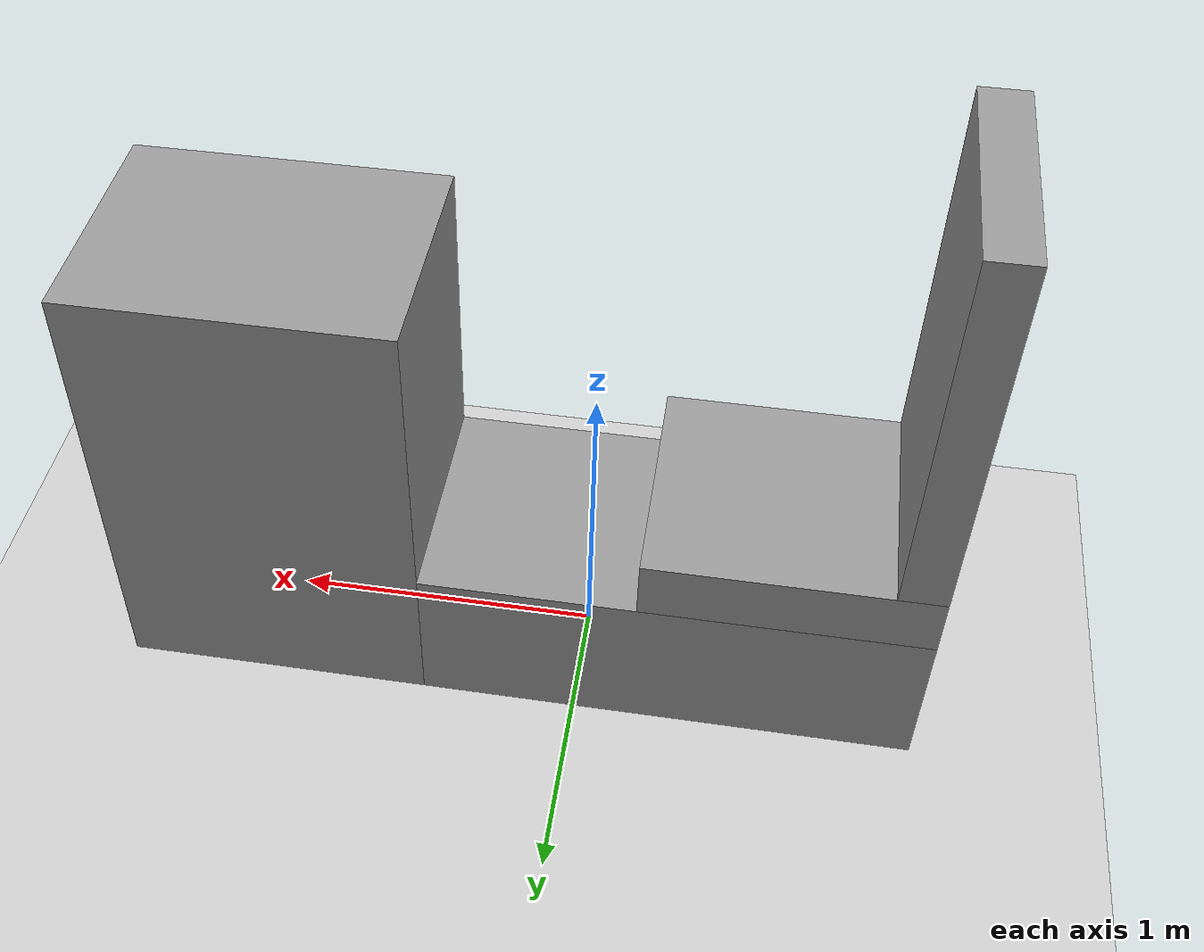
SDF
<gazebo version="1.2">
 <world name="default">
  <physics type="ode">
   <gravity>0 0 -9.81</gravity>
   <update_rate>1000</update_rate>
   <ode>
    <solver><type>quick</type><dt>0.001</dt><iters>40</iters><sor>1.0</sor></solver>
    <constraints>
     <cfm>0.0</cfm>
     <erp>0.2</erp>
     <contact_max_correcting_vel>100.0</contact_max_correcting_vel>
     <contact_surface_layer>0.0</contact_surface_layer>
    </constraints>
   </ode>
  </physics>
  <include><uri>model://sun</uri></include>
  <include><uri>model://ground_plane</uri></include>
  <model name="chair">
   <link name="chair1">
    <pose>-0.3 0.0 0.2575 0.000000 0.000000 0.000000</pose>
    <inertial><mass>100.000000</mass></inertial>
    <collision name="collision"><geometry><box><size>1.6 0.77 0.515</size></box></geometry></collision>
    <visual name="visual">
     <geometry><box><size>1.6 0.77 0.515</size></box></geometry>
     <material>
      <script><uri>file://media/materials/scripts/gazebo.material</uri><name>Gazebo/Grey</name></script>
     </material>
    </visual>
    <velocity_decay><linear>0.000000</linear><angular>0.000000</angular></velocity_decay>
   </link>
   <link name="chair2">
    <pose>-0.645 0.0 0.615 0.000000 0.000000 0.000000</pose>
    <inertial><mass>100.000000</mass></inertial>
    <collision name="collision"><geometry><box><size>0.91 0.77 0.2</size></box></geometry></collision>
    <visual name="visual">
     <geometry><box><size>0.91 0.77 0.2</size></box></geometry>
     <material>
      <script><uri>file://media/materials/scripts/gazebo.material</uri><name>Gazebo/Grey</name></script>
     </material>
    </visual>
    <velocity_decay><linear>0.000000</linear><angular>0.000000</angular></velocity_decay>
   </link>
   <link name="chair3">
    <pose>-1.025 0.0 1.335 0.000000 0.000000 0.000000</pose>
    <inertial><mass>100.000000</mass></inertial>
    <collision name="collision"><geometry><box><size>0.15 0.77 1.24</size></box></geometry></collision>
    <visual name="visual">
     <geometry><box><size>0.15 0.77 1.24</size></box></geometry>
     <material>
      <script><uri>file://media/materials/scripts/gazebo.material</uri><name>Gazebo/Grey</name></script>
     </material>
    </visual>
    <velocity_decay><linear>0.000000</linear><angular>0.000000</angular></velocity_decay>
   </link>
   <link name="chair4">
    <pose>1 0 0.75 0.000000 0.000000 0.000000</pose>
    <inertial><mass>100.000000</mass></inertial>
    <collision name="collision"><geometry><box><size>1 0.77 1.5</size></box></geometry></collision>
    <visual name="visual">
     <geometry><box><size>1 0.77 1.5</size></box></geometry>
     <material>
      <script><uri>file://media/materials/scripts/gazebo.material</uri><name>Gazebo/Grey</name></script>
     </material>
    </visual>
    <velocity_decay><linear>0.000000</linear><angular>0.000000</angular></velocity_decay>
   </link>
   <static>1</static>
  </model>
  <plugin filename="libVRCPlugin.so" name="vrc_plugin">
   <atlas><model_name>atlas</model_name><pin_link>utorso</pin_link></atlas>
   <drc_vehicle><model_name>golf_cart</model_name><seat_link>chassis</seat_link></drc_vehicle>
   <drc_fire_hose>
    <fire_hose_model>fire_hose</fire_hose_model>
    <coupling_link>coupling</coupling_link>
    <standpipe_model>standpipe</standpipe_model>
    <spout_link>standpipe</spout_link>
    <thread_pitch>-1000</thread_pitch>
    <coupling_relative_pose>1.17038e-05 -0.125623 0.35 -0.0412152 -1.57078 1.61199</coupling_relative_pose>
   </drc_fire_hose>
  </plugin>
 </world>
</gazebo>
